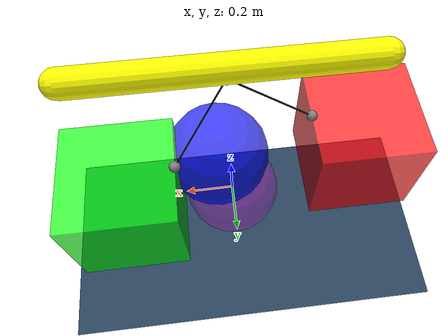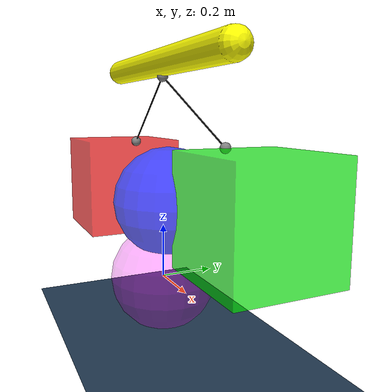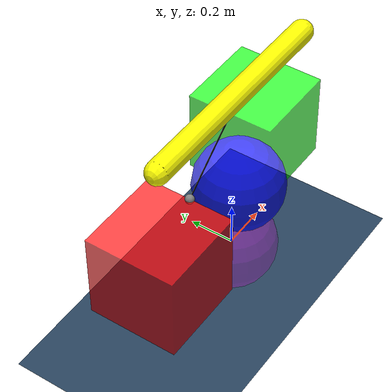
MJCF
<?xml version='1.0' encoding='utf-8'?>
<mujoco>
  <default>
    <geom friction="1.0 0.05 0.01" />
    <joint damping="2" />
  </default>
  <asset>
    <texture name="grid" type="2d" builtin="checker" rgb1=".1 .2 .3" rgb2=".2 .3 .4" width="300" height="300" mark="none" />
    <material name="grid" texture="grid" texrepeat="1 1" texuniform="true" reflectance=".2" />
  </asset>
  <worldbody>
    <light pos="0 0 3" />
    <geom name="floor" type="plane" pos="0 0 -.3" size="2 2 .1" material="grid" friction="0 0 0" />
    <body name="crane_base" pos="0 0 0.8">
      <joint name="crane_base__up_down" type="slide" axis="0 0 1" range="-0.5 1" damping="3" />
      <geom name="crane_base__crane" type="capsule" fromto="-0.5 0 0 0.5 0 0" size=".05" rgba="1 1 0 1" />
      <site name="crane_base__crane_site" pos="0 0 -0.05" size=".02" />
    </body>
    <body name="red_box" pos="-0.5 0 0.3">
      <freejoint />
      <geom name="red_box__box" type="box" size=".2 .2 .2" rgba="1 0 0 0.7" friction="0.9 0.05 0.01" />

      <site name="red_box__top" pos="0.2 0 0.2" size=".02" />

    </body>
    <body name="blue_box" pos="0.05 0 0.3">
      <freejoint name="blue_box__blue_joint" />
      <geom name="blue_box__blue_box" type="sphere" size=".2" rgba="0 0 1 0.7" friction="0.9 0.05 0.01" />
    </body>
    <body name="dummy" pos="0 0 0">
      <joint name="dummy__tx" type="slide" axis="1 0 0" />
      <joint name="dummy__ty" type="slide" axis="0 1 0" />
      <joint name="dummy__tz" type="slide" axis="0 0 1" />
      <geom name="dummy__dummy" type="sphere" size=".2" rgba="1 0 1 0.3" contype="0" conaffinity="0"  />

    </body>
    <body name="green_box" pos="0.4 0.15 0.3">
      <freejoint />
      <geom name="green_box__box" type="box" size=".2 .2 .2" rgba="0 1 0 0.7" friction="0.9 0.05 0.01" />

      <site name="green_box__top" pos="-0.2 0 0.2" size=".02" />

    </body>
  </worldbody>
  <tendon>
    <spatial name="chain_red" limited="true" range="0 1" rgba="0 0 0 1">
      <site site="red_box__top" />
      <site site="crane_base__crane_site" />
    </spatial>
    <spatial name="chain_green" limited="true" range="0 1" rgba="0 0 0 1">
      <site site="green_box__top" />
      <site site="crane_base__crane_site" />
    </spatial>
  </tendon>
  <actuator>
    <position name="lift" joint="crane_base__up_down" kp="7000" kv="2000" ctrlrange="-0.5 2.0" />
  </actuator>
</mujoco>
